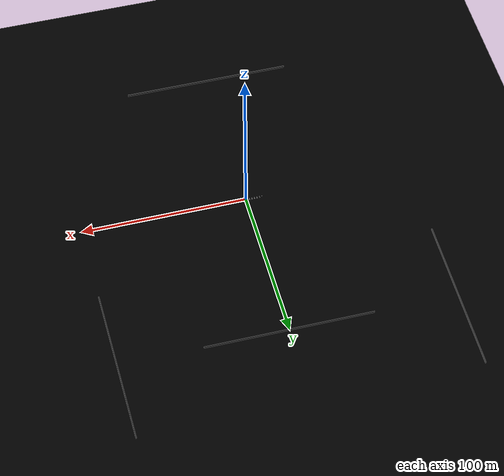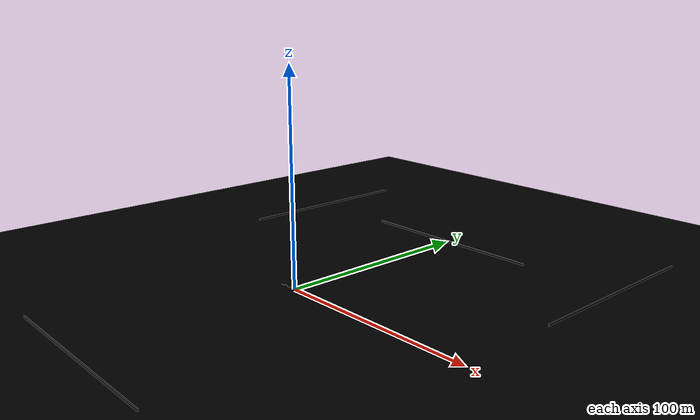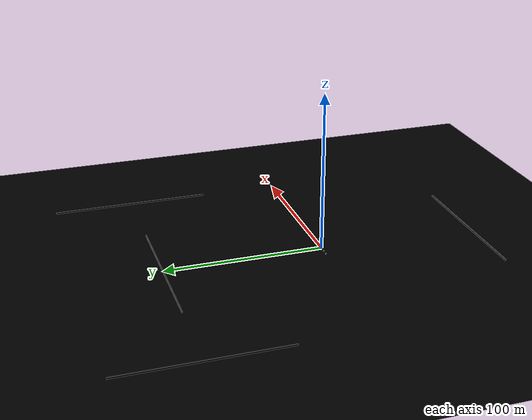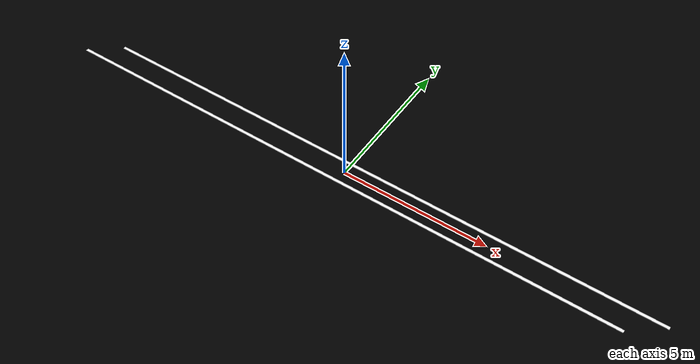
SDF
<sdf version="1.8">
 <world name="test_track">
  <physics name="1ms" type="ignored">
   <max_step_size>0.001</max_step_size>
   <real_time_factor>1</real_time_factor>
  </physics>
  <plugin filename="gz-sim-physics-system" name="gz::sim::systems::Physics"/>
  <plugin filename="gz-sim-user-commands-system" name="gz::sim::systems::UserCommands"/>
  <plugin filename="gz-sim-scene-broadcaster-system" name="gz::sim::systems::SceneBroadcaster"/>
  <plugin filename="gz-sim-sensors-system" name="gz::sim::systems::Sensors">
   <render_engine>ogre2</render_engine>
  </plugin>
  <plugin filename="gz-sim-imu-system" name="gz::sim::systems::Imu"/>
  <model name="ground_plane">
   <static>true</static>
   <link name="link">
    <collision name="collision">
     <geometry><plane><normal>0 0 1</normal><size>100 100</size></plane></geometry>
    </collision>
    <visual name="visual">
     <geometry><plane><normal>0 0 1</normal><size>100 100</size></plane></geometry>
     <material><ambient>0 0 0 1</ambient><diffuse>0 0 0 1</diffuse></material>
    </visual>
   </link>
  </model>
  <model name="left_lane">
   <static>true</static>
   <link name="link">
    <collision name="collision"><geometry><box><size>0.1 20 0.01</size></box></geometry></collision>
    <visual name="visual">
     <geometry><box><size>0.1 20 0.01</size></box></geometry>
     <material><ambient>1 1 1 1</ambient><diffuse>1 1 1 1</diffuse></material>
    </visual>
    <pose>-0.5 -0.4 0.005 0 0 1.5708</pose>
   </link>
  </model>
  <model name="right_lane">
   <static>true</static>
   <link name="link">
    <collision name="collision"><geometry><box><size>0.1 20 0.01</size></box></geometry></collision>
    <visual name="visual">
     <geometry><box><size>0.1 20 0.01</size></box></geometry>
     <material><ambient>1 1 1 1</ambient><diffuse>1 1 1 1</diffuse></material>
    </visual>
    <pose>0.5 0.4 0.005 0 0 1.5708</pose>
   </link>
  </model>
  <model name="ground_wall_left">
   <static>true</static>
   <link name="link">
    <collision name="collision"><geometry><box><size>0.5 100 1</size></box></geometry></collision>
    <visual name="visual">
     <geometry><box><size>0.5 100 1</size></box></geometry>
     <material><ambient>0 0 0 1</ambient><diffuse>0 0 0 1</diffuse></material>
    </visual>
    <pose>-100 100 0.5 0 0 0</pose>
   </link>
  </model>
  <model name="ground_wall_right">
   <static>true</static>
   <link name="link">
    <collision name="collision"><geometry><box><size>0.5 100 1</size></box></geometry></collision>
    <visual name="visual">
     <geometry><box><size>0.5 100 1</size></box></geometry>
     <material><ambient>0 0 0 1</ambient><diffuse>0 0 0 1</diffuse></material>
    </visual>
    <pose>100 100 0.5 0 0 0</pose>
   </link>
  </model>
  <model name="ground_wall_front">
   <static>true</static>
   <link name="link">
    <collision name="collision"><geometry><box><size>100 0.5 1</size></box></geometry></collision>
    <visual name="visual">
     <geometry><box><size>100 0.5 1</size></box></geometry>
     <material><ambient>0 0 0 1</ambient><diffuse>0 0 0 1</diffuse></material>
    </visual>
    <pose>0 100 0.5 0 0 0</pose>
   </link>
  </model>
  <model name="ground_wall_back">
   <static>true</static>
   <link name="link">
    <collision name="collision"><geometry><box><size>100 0.5 1</size></box></geometry></collision>
    <visual name="visual">
     <geometry><box><size>100 0.5 1</size></box></geometry>
     <material><ambient>0 0 0 1</ambient><diffuse>0 0 0 1</diffuse></material>
    </visual>
    <pose>0 -100 0.5 0 0 0</pose>
   </link>
  </model>
  <light name="sun" type="directional">
   <pose>0 0 10 0 0 0</pose>
   <intensity>1</intensity>
   <direction>-0.5 0.1 -0.9</direction>
   <diffuse>0.8 0.8 0.8 1</diffuse>
   <specular>0.2 0.2 0.2 1</specular>
  </light>
 </world>
</sdf>
